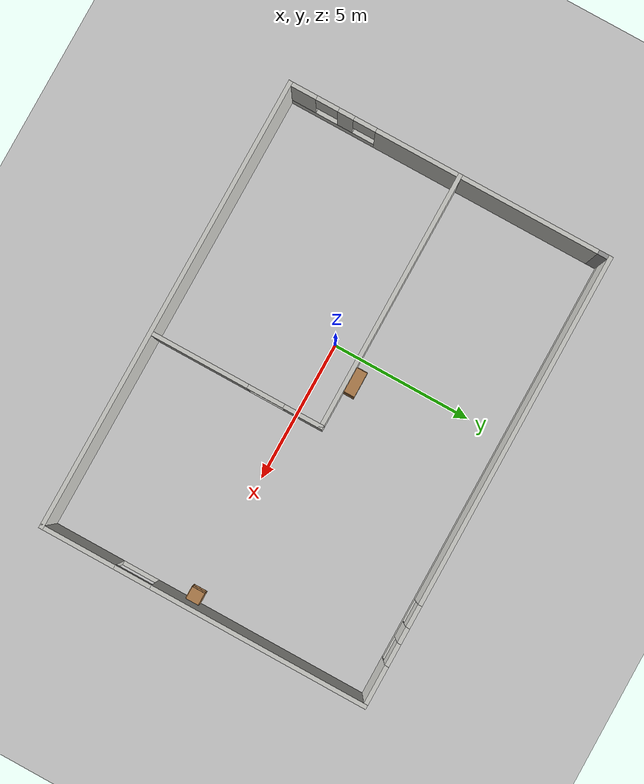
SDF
<sdf version="1.6">
 <world name="default">
  <plugin name="hello" filename="libhello.so"/>
  <light name="sun" type="directional">
   <pose>0 0 10 0 -0 0</pose>
   <diffuse>0.8 0.8 0.8 1</diffuse>
   <specular>0.2 0.2 0.2 1</specular>
   <attenuation>
    <range>1000</range>
    <constant>0.9</constant>
    <linear>0.01</linear>
    <quadratic>0.001</quadratic>
   </attenuation>
   <direction>-0.5 0.1 -0.9</direction>
   <spot><inner_angle>0</inner_angle><outer_angle>0</outer_angle><falloff>0</falloff></spot>
  </light>
  <model name="ground_plane">
   <static>1</static>
   <link name="link">
    <collision name="collision">
     <geometry><plane><normal>0 0 1</normal><size>100 100</size></plane></geometry>
     <surface>
      <contact><collide_bitmask>65535</collide_bitmask></contact>
      <friction><ode><mu>100</mu><mu2>50</mu2></ode></friction>
     </surface>
    </collision>
    <visual name="visual">
     <cast_shadows>0</cast_shadows>
     <geometry><plane><normal>0 0 1</normal><size>100 100</size></plane></geometry>
     <material>
      <script><uri>file://media/materials/scripts/gazebo.material</uri><name>Gazebo/Grey</name></script>
     </material>
    </visual>
   </link>
  </model>
  <gravity>0 0 -9.8</gravity>
  <magnetic_field>6e-06 2.3e-05 -4.2e-05</magnetic_field>
  <atmosphere type="adiabatic"/>
  <physics name="default_physics" default="0" type="ode">
   <max_step_size>0.001</max_step_size>
   <real_time_factor>1</real_time_factor>
   <real_time_update_rate>1000</real_time_update_rate>
  </physics>
  <scene><ambient>0.4 0.4 0.4 1</ambient><background>0.7 0.7 0.7 1</background><shadows>1</shadows></scene>
  <spherical_coordinates>
   <surface_model>EARTH_WGS84</surface_model>
   <latitude_deg>0</latitude_deg>
   <longitude_deg>0</longitude_deg>
   <elevation>0</elevation>
   <heading_deg>0</heading_deg>
  </spherical_coordinates>
  <model name="building">
   <pose>1.57198 0.564152 0 0 -0 0</pose>
   <link name="Wall_0">
    <pose>-8.05 -0.25 0 0 -0 -1.5708</pose>
    <visual name="Wall_0_Visual_0">
     <pose>-1.60737 0 1.25 0 -0 0</pose>
     <geometry><box><size>8.03525 0.15 2.5</size></box></geometry>
     <material>
      <script><uri>file://media/materials/scripts/gazebo.material</uri><name>Gazebo/CeilingTiled</name></script>
      <ambient>0 0.666667 0 1</ambient>
     </material>
     <meta><layer>0</layer></meta>
    </visual>
    <collision name="Wall_0_Collision_0">
     <geometry><box><size>8.03525 0.15 2.5</size></box></geometry>
     <pose>-1.60737 0 1.25 0 -0 0</pose>
    </collision>
    <visual name="Wall_0_Visual_1">
     <pose>4.01762 0 0.25 0 -0 0</pose>
     <geometry><box><size>3.21475 0.15 0.5</size></box></geometry>
     <material>
      <script><uri>file://media/materials/scripts/gazebo.material</uri><name>Gazebo/CeilingTiled</name></script>
      <ambient>0 0.666667 0 1</ambient>
     </material>
     <meta><layer>0</layer></meta>
    </visual>
    <collision name="Wall_0_Collision_1">
     <geometry><box><size>3.21475 0.15 0.5</size></box></geometry>
     <pose>4.01762 0 0.25 0 -0 0</pose>
    </collision>
    <visual name="Wall_0_Visual_2">
     <pose>3.49236 0 1.5 0 -0 0</pose>
     <geometry><box><size>0.564225 0.15 2</size></box></geometry>
     <material>
      <script><uri>file://media/materials/scripts/gazebo.material</uri><name>Gazebo/CeilingTiled</name></script>
      <ambient>0 0.666667 0 1</ambient>
     </material>
     <meta><layer>0</layer></meta>
    </visual>
    <collision name="Wall_0_Collision_2">
     <geometry><box><size>0.564225 0.15 2</size></box></geometry>
     <pose>3.49236 0 1.5 0 -0 0</pose>
    </collision>
    <visual name="Wall_0_Visual_3">
     <pose>5.09974 0 1.5 0 -0 0</pose>
     <geometry><box><size>1.05052 0.15 2</size></box></geometry>
     <material>
      <script><uri>file://media/materials/scripts/gazebo.material</uri><name>Gazebo/CeilingTiled</name></script>
      <ambient>0 0.666667 0 1</ambient>
     </material>
     <meta><layer>0</layer></meta>
    </visual>
    <collision name="Wall_0_Collision_3">
     <geometry><box><size>1.05052 0.15 2</size></box></geometry>
     <pose>5.09974 0 1.5 0 -0 0</pose>
    </collision>
    <visual name="Wall_0_Visual_4">
     <pose>2.81025 0 1.9 0 -0 0</pose>
     <geometry><box><size>0.8 0.15 1.2</size></box></geometry>
     <material>
      <script><uri>file://media/materials/scripts/gazebo.material</uri><name>Gazebo/CeilingTiled</name></script>
      <ambient>0 0.666667 0 1</ambient>
     </material>
     <meta><layer>0</layer></meta>
    </visual>
    <collision name="Wall_0_Collision_4">
     <geometry><box><size>0.8 0.15 1.2</size></box></geometry>
     <pose>2.81025 0 1.9 0 -0 0</pose>
    </collision>
    <visual name="Wall_0_Visual_5">
     <pose>4.17448 0 1.9 0 -0 0</pose>
     <geometry><box><size>0.8 0.15 1.2</size></box></geometry>
     <material>
      <script><uri>file://media/materials/scripts/gazebo.material</uri><name>Gazebo/CeilingTiled</name></script>
      <ambient>0 0.666667 0 1</ambient>
     </material>
     <meta><layer>0</layer></meta>
    </visual>
    <collision name="Wall_0_Collision_5">
     <geometry><box><size>0.8 0.15 1.2</size></box></geometry>
     <pose>4.17448 0 1.9 0 -0 0</pose>
    </collision>
   </link>
   <link name="Wall_1">
    <collision name="Wall_1_Collision">
     <geometry><box><size>16.25 0.15 2.5</size></box></geometry>
     <pose>0 0 1.25 0 -0 0</pose>
    </collision>
    <visual name="Wall_1_Visual">
     <pose>0 0 1.25 0 -0 0</pose>
     <geometry><box><size>16.25 0.15 2.5</size></box></geometry>
     <material>
      <script><uri>file://media/materials/scripts/gazebo.material</uri><name>Gazebo/CeilingTiled</name></script>
      <ambient>0 0.666667 0 1</ambient>
     </material>
     <meta><layer>0</layer></meta>
    </visual>
    <pose>0 -5.8 0 0 -0 0</pose>
   </link>
   <link name="Wall_2">
    <pose>8.05 -0 0 0 -0 1.5708</pose>
    <visual name="Wall_2_Visual_0">
     <pose>-4.53027 0 1.25 0 -0 0</pose>
     <geometry><box><size>2.68945 0.15 2.5</size></box></geometry>
     <material>
      <script><uri>file://media/materials/scripts/gazebo.material</uri><name>Gazebo/CeilingTiled</name></script>
      <ambient>0 0.666667 0 1</ambient>
     </material>
     <meta><layer>0</layer></meta>
    </visual>
    <collision name="Wall_2_Collision_0">
     <geometry><box><size>2.68945 0.15 2.5</size></box></geometry>
     <pose>-4.53027 0 1.25 0 -0 0</pose>
    </collision>
    <visual name="Wall_2_Visual_1">
     <pose>1.99473 0 1.25 0 -0 0</pose>
     <geometry><box><size>7.76055 0.15 2.5</size></box></geometry>
     <material>
      <script><uri>file://media/materials/scripts/gazebo.material</uri><name>Gazebo/CeilingTiled</name></script>
      <ambient>0 0.666667 0 1</ambient>
     </material>
     <meta><layer>0</layer></meta>
    </visual>
    <collision name="Wall_2_Collision_1">
     <geometry><box><size>7.76055 0.15 2.5</size></box></geometry>
     <pose>1.99473 0 1.25 0 -0 0</pose>
    </collision>
    <visual name="Wall_2_Visual_2">
     <pose>-2.53555 0 0 0 -0 0</pose>
     <geometry><box><size>1.3 0.15 0</size></box></geometry>
     <material>
      <script><uri>file://media/materials/scripts/gazebo.material</uri><name>Gazebo/CeilingTiled</name></script>
      <ambient>0 0.666667 0 1</ambient>
     </material>
     <meta><layer>0</layer></meta>
    </visual>
    <collision name="Wall_2_Collision_2">
     <geometry><box><size>1.3 0.15 0</size></box></geometry>
     <pose>-2.53555 0 0 0 -0 0</pose>
    </collision>
    <visual name="Wall_2_Visual_3">
     <pose>-2.53555 0 2.35 0 -0 0</pose>
     <geometry><box><size>1.3 0.15 0.3</size></box></geometry>
     <material>
      <script><uri>file://media/materials/scripts/gazebo.material</uri><name>Gazebo/CeilingTiled</name></script>
      <ambient>0 0.666667 0 1</ambient>
     </material>
     <meta><layer>0</layer></meta>
    </visual>
    <collision name="Wall_2_Collision_3">
     <geometry><box><size>1.3 0.15 0.3</size></box></geometry>
     <pose>-2.53555 0 2.35 0 -0 0</pose>
    </collision>
   </link>
   <link name="Wall_3">
    <pose>0 5.8 0 0 -0 3.14159</pose>
    <visual name="Wall_3_Visual_0">
     <pose>-7.37345 0 1.25 0 -0 0</pose>
     <geometry><box><size>1.50311 0.15 2.5</size></box></geometry>
     <material>
      <script><uri>file://media/materials/scripts/gazebo.material</uri><name>Gazebo/CeilingTiled</name></script>
      <ambient>0 0.666667 0 1</ambient>
     </material>
     <meta><layer>0</layer></meta>
    </visual>
    <collision name="Wall_3_Collision_0">
     <geometry><box><size>1.50311 0.15 2.5</size></box></geometry>
     <pose>-7.37345 0 1.25 0 -0 0</pose>
    </collision>
    <visual name="Wall_3_Visual_1">
     <pose>0.751554 0 0.25 0 -0 0</pose>
     <geometry><box><size>14.7469 0.15 0.5</size></box></geometry>
     <material>
      <script><uri>file://media/materials/scripts/gazebo.material</uri><name>Gazebo/CeilingTiled</name></script>
      <ambient>0 0.666667 0 1</ambient>
     </material>
     <meta><layer>0</layer></meta>
    </visual>
    <collision name="Wall_3_Collision_1">
     <geometry><box><size>14.7469 0.15 0.5</size></box></geometry>
     <pose>0.751554 0 0.25 0 -0 0</pose>
    </collision>
    <visual name="Wall_3_Visual_2">
     <pose>-5.53978 0 1.5 0 -0 0</pose>
     <geometry><box><size>0.564225 0.15 2</size></box></geometry>
     <material>
      <script><uri>file://media/materials/scripts/gazebo.material</uri><name>Gazebo/CeilingTiled</name></script>
      <ambient>0 0.666667 0 1</ambient>
     </material>
     <meta><layer>0</layer></meta>
    </visual>
    <collision name="Wall_3_Collision_2">
     <geometry><box><size>0.564225 0.15 2</size></box></geometry>
     <pose>-5.53978 0 1.5 0 -0 0</pose>
    </collision>
    <visual name="Wall_3_Visual_3">
     <pose>1.83367 0 1.5 0 -0 0</pose>
     <geometry><box><size>12.5827 0.15 2</size></box></geometry>
     <material>
      <script><uri>file://media/materials/scripts/gazebo.material</uri><name>Gazebo/CeilingTiled</name></script>
      <ambient>0 0.666667 0 1</ambient>
     </material>
     <meta><layer>0</layer></meta>
    </visual>
    <collision name="Wall_3_Collision_3">
     <geometry><box><size>12.5827 0.15 2</size></box></geometry>
     <pose>1.83367 0 1.5 0 -0 0</pose>
    </collision>
    <visual name="Wall_3_Visual_4">
     <pose>-6.22189 0 1.9 0 -0 0</pose>
     <geometry><box><size>0.8 0.15 1.2</size></box></geometry>
     <material>
      <script><uri>file://media/materials/scripts/gazebo.material</uri><name>Gazebo/CeilingTiled</name></script>
      <ambient>0 0.666667 0 1</ambient>
     </material>
     <meta><layer>0</layer></meta>
    </visual>
    <collision name="Wall_3_Collision_4">
     <geometry><box><size>0.8 0.15 1.2</size></box></geometry>
     <pose>-6.22189 0 1.9 0 -0 0</pose>
    </collision>
    <visual name="Wall_3_Visual_5">
     <pose>-4.85767 0 1.9 0 -0 0</pose>
     <geometry><box><size>0.8 0.15 1.2</size></box></geometry>
     <material>
      <script><uri>file://media/materials/scripts/gazebo.material</uri><name>Gazebo/CeilingTiled</name></script>
      <ambient>0 0.666667 0 1</ambient>
     </material>
     <meta><layer>0</layer></meta>
    </visual>
    <collision name="Wall_3_Collision_5">
     <geometry><box><size>0.8 0.15 1.2</size></box></geometry>
     <pose>-4.85767 0 1.9 0 -0 0</pose>
    </collision>
   </link>
   <link name="Wall_4">
    <collision name="Wall_4_Collision">
     <geometry><box><size>0.65 0.15 2.5</size></box></geometry>
     <pose>0 0 1.25 0 -0 0</pose>
    </collision>
    <visual name="Wall_4_Visual">
     <pose>0 0 1.25 0 -0 0</pose>
     <geometry><box><size>0.65 0.15 2.5</size></box></geometry>
     <material>
      <script><uri>file://media/materials/scripts/gazebo.material</uri><name>Gazebo/Grey</name></script>
      <ambient>1 1 1 1</ambient>
     </material>
     <meta><layer>0</layer></meta>
    </visual>
    <pose>-8.05 5.55 0 0 -0 -1.5708</pose>
   </link>
   <link name="Wall_7">
    <collision name="Wall_7_Collision">
     <geometry><box><size>9.25 0.15 2.5</size></box></geometry>
     <pose>0 0 1.25 0 -0 0</pose>
    </collision>
    <visual name="Wall_7_Visual">
     <pose>0 0 1.25 0 -0 0</pose>
     <geometry><box><size>9.25 0.15 2.5</size></box></geometry>
     <material>
      <script><uri>file://media/materials/scripts/gazebo.material</uri><name>Gazebo/CeilingTiled</name></script>
      <ambient>0 0.666667 0 1</ambient>
     </material>
     <meta><layer>0</layer></meta>
    </visual>
    <pose>-3.5 0.367802 0 0 -0 0</pose>
   </link>
   <link name="Wall_8">
    <pose>1.05 -2.6822 0 0 -0 -1.5708</pose>
    <visual name="Wall_8_Visual_0">
     <pose>-2.41557 0 1.25 0 -0 0</pose>
     <geometry><box><size>1.41887 0.15 2.5</size></box></geometry>
     <material>
      <script><uri>file://media/materials/scripts/gazebo.material</uri><name>Gazebo/CeilingTiled</name></script>
      <ambient>0 0.666667 0 1</ambient>
     </material>
     <meta><layer>0</layer></meta>
    </visual>
    <collision name="Wall_8_Collision_0">
     <geometry><box><size>1.41887 0.15 2.5</size></box></geometry>
     <pose>-2.41557 0 1.25 0 -0 0</pose>
    </collision>
    <visual name="Wall_8_Visual_1">
     <pose>1.35943 0 1.25 0 -0 0</pose>
     <geometry><box><size>3.53113 0.15 2.5</size></box></geometry>
     <material>
      <script><uri>file://media/materials/scripts/gazebo.material</uri><name>Gazebo/CeilingTiled</name></script>
      <ambient>0 0.666667 0 1</ambient>
     </material>
     <meta><layer>0</layer></meta>
    </visual>
    <collision name="Wall_8_Collision_1">
     <geometry><box><size>3.53113 0.15 2.5</size></box></geometry>
     <pose>1.35943 0 1.25 0 -0 0</pose>
    </collision>
    <visual name="Wall_8_Visual_2">
     <pose>-1.05613 0 0 0 -0 0</pose>
     <geometry><box><size>1.3 0.15 0</size></box></geometry>
     <material>
      <script><uri>file://media/materials/scripts/gazebo.material</uri><name>Gazebo/CeilingTiled</name></script>
      <ambient>0 0.666667 0 1</ambient>
     </material>
     <meta><layer>0</layer></meta>
    </visual>
    <collision name="Wall_8_Collision_2">
     <geometry><box><size>1.3 0.15 0</size></box></geometry>
     <pose>-1.05613 0 0 0 -0 0</pose>
    </collision>
    <visual name="Wall_8_Visual_3">
     <pose>-1.05613 0 2.35 0 -0 0</pose>
     <geometry><box><size>1.3 0.15 0.3</size></box></geometry>
     <material>
      <script><uri>file://media/materials/scripts/gazebo.material</uri><name>Gazebo/CeilingTiled</name></script>
      <ambient>0 0.666667 0 1</ambient>
     </material>
     <meta><layer>0</layer></meta>
    </visual>
    <collision name="Wall_8_Collision_3">
     <geometry><box><size>1.3 0.15 0.3</size></box></geometry>
     <pose>-1.05613 0 2.35 0 -0 0</pose>
    </collision>
   </link>
   <static>1</static>
  </model>
  <model name="bookshelf">
   <static>1</static>
   <link name="link">
    <inertial><mass>1</mass></inertial>
    <collision name="back">
     <pose>0 0.005 0.6 0 -0 0</pose>
     <geometry><box><size>0.9 0.01 1.2</size></box></geometry>
    </collision>
    <visual name="visual1">
     <pose>0 0.005 0.6 0 -0 0</pose>
     <geometry><box><size>0.9 0.01 1.2</size></box></geometry>
     <material>
      <script><uri>file://media/materials/scripts/gazebo.material</uri><name>Gazebo/Wood</name></script>
     </material>
    </visual>
    <collision name="left_side">
     <pose>0.45 -0.195 0.6 0 -0 0</pose>
     <geometry><box><size>0.02 0.4 1.2</size></box></geometry>
    </collision>
    <visual name="visual2">
     <pose>0.45 -0.195 0.6 0 -0 0</pose>
     <geometry><box><size>0.02 0.4 1.2</size></box></geometry>
     <material>
      <script><uri>file://media/materials/scripts/gazebo.material</uri><name>Gazebo/Wood</name></script>
     </material>
    </visual>
    <collision name="right_side">
     <pose>-0.45 -0.195 0.6 0 -0 0</pose>
     <geometry><box><size>0.02 0.4 1.2</size></box></geometry>
    </collision>
    <visual name="visual3">
     <pose>-0.45 -0.195 0.6 0 -0 0</pose>
     <geometry><box><size>0.02 0.4 1.2</size></box></geometry>
     <material>
      <script><uri>file://media/materials/scripts/gazebo.material</uri><name>Gazebo/Wood</name></script>
     </material>
    </visual>
    <collision name="bottom">
     <pose>0 -0.195 0.03 0 -0 0</pose>
     <geometry><box><size>0.88 0.4 0.06</size></box></geometry>
    </collision>
    <visual name="visual4">
     <pose>0 -0.195 0.03 0 -0 0</pose>
     <geometry><box><size>0.88 0.4 0.06</size></box></geometry>
     <material>
      <script><uri>file://media/materials/scripts/gazebo.material</uri><name>Gazebo/Wood</name></script>
     </material>
    </visual>
    <collision name="top">
     <pose>0 -0.195 1.19 0 -0 0</pose>
     <geometry><box><size>0.88 0.4 0.02</size></box></geometry>
    </collision>
    <visual name="visual5">
     <pose>0 -0.195 1.19 0 -0 0</pose>
     <geometry><box><size>0.88 0.4 0.02</size></box></geometry>
     <material>
      <script><uri>file://media/materials/scripts/gazebo.material</uri><name>Gazebo/Wood</name></script>
     </material>
    </visual>
    <collision name="low_shelf">
     <pose>0 -0.195 0.43 0 -0 0</pose>
     <geometry><box><size>0.88 0.4 0.02</size></box></geometry>
    </collision>
    <visual name="visual6">
     <pose>0 -0.195 0.43 0 -0 0</pose>
     <geometry><box><size>0.88 0.4 0.02</size></box></geometry>
     <material>
      <script><uri>file://media/materials/scripts/gazebo.material</uri><name>Gazebo/Wood</name></script>
     </material>
    </visual>
    <collision name="high_shelf">
     <pose>0 -0.195 0.8 0 -0 0</pose>
     <geometry><box><size>0.88 0.4 0.02</size></box></geometry>
    </collision>
    <visual name="visual7">
     <pose>0 -0.195 0.8 0 -0 0</pose>
     <geometry><box><size>0.88 0.4 0.02</size></box></geometry>
     <material>
      <script><uri>file://media/materials/scripts/gazebo.material</uri><name>Gazebo/Wood</name></script>
     </material>
    </visual>
   </link>
   <pose>0.795856 1.38076 0 0 -0 0</pose>
  </model>
  <model name="cabinet">
   <static>1</static>
   <link name="cabinet_bottom_plate">
    <inertial>
     <pose>0 0 -1 0 -0 0</pose>
     <inertia><ixx>2.05</ixx><ixy>0</ixy><ixz>0</ixz><iyy>2.05</iyy><iyz>0</iyz><izz>2.05</izz></inertia>
     <mass>25</mass>
    </inertial>
    <collision name="cabinet_bottom_plate_geom">
     <pose>0 0 0.01 0 -0 0</pose>
     <geometry><box><size>0.45 0.45 0.02</size></box></geometry>
    </collision>
    <visual name="cabinet_bottom_plate_geom_visual">
     <pose>0 0 0.01 0 -0 0</pose>
     <geometry><box><size>0.45 0.45 0.02</size></box></geometry>
     <material>
      <script><uri>file://media/materials/scripts/gazebo.material</uri><name>Gazebo/Wood</name></script>
     </material>
    </visual>
    <collision name="cabinet_bottom_plate_geom_cabinet_back_plate">
     <pose>0.235 0 0.51 0 -0 0</pose>
     <geometry><box><size>0.02 0.45 1.02</size></box></geometry>
    </collision>
    <visual name="cabinet_bottom_plate_geom_cabinet_back_plate_visual">
     <pose>0.235 0 0.51 0 -0 0</pose>
     <geometry><box><size>0.02 0.45 1.02</size></box></geometry>
     <material>
      <script><uri>file://media/materials/scripts/gazebo.material</uri><name>Gazebo/Wood</name></script>
     </material>
    </visual>
    <collision name="cabinet_bottom_plate_geom_cabinet_left_plate">
     <pose>0 0.235 0.51 0 -0 0</pose>
     <geometry><box><size>0.45 0.02 1.02</size></box></geometry>
    </collision>
    <visual name="cabinet_bottom_plate_geom_cabinet_left_plate_visual">
     <pose>0 0.235 0.51 0 -0 0</pose>
     <geometry><box><size>0.45 0.02 1.02</size></box></geometry>
     <material>
      <script><uri>file://media/materials/scripts/gazebo.material</uri><name>Gazebo/Wood</name></script>
     </material>
    </visual>
    <collision name="cabinet_bottom_plate_geom_cabinet_middle_plate">
     <pose>0 0 0.51 0 -0 0</pose>
     <geometry><box><size>0.45 0.45 0.02</size></box></geometry>
    </collision>
    <visual name="cabinet_bottom_plate_geom_cabinet_middle_plate_visual">
     <pose>0 0 0.51 0 -0 0</pose>
     <geometry><box><size>0.45 0.45 0.02</size></box></geometry>
     <material>
      <script><uri>file://media/materials/scripts/gazebo.material</uri><name>Gazebo/Wood</name></script>
     </material>
    </visual>
    <collision name="cabinet_bottom_plate_geom_cabinet_right_plate">
     <pose>0 -0.235 0.51 0 -0 0</pose>
     <geometry><box><size>0.45 0.02 1.02</size></box></geometry>
    </collision>
    <visual name="cabinet_bottom_plate_geom_cabinet_right_plate_visual">
     <pose>0 -0.235 0.51 0 -0 0</pose>
     <geometry><box><size>0.45 0.02 1.02</size></box></geometry>
     <material>
      <script><uri>file://media/materials/scripts/gazebo.material</uri><name>Gazebo/Wood</name></script>
     </material>
    </visual>
    <collision name="cabinet_bottom_plate_geom_cabinet_top_plate">
     <pose>0 0 1.01 0 -0 0</pose>
     <geometry><box><size>0.45 0.45 0.02</size></box></geometry>
    </collision>
    <visual name="cabinet_bottom_plate_geom_cabinet_top_plate_visual">
     <pose>0 0 1.01 0 -0 0</pose>
     <geometry><box><size>0.45 0.45 0.02</size></box></geometry>
     <material>
      <script><uri>file://media/materials/scripts/gazebo.material</uri><name>Gazebo/Wood</name></script>
     </material>
    </visual>
   </link>
   <pose>9.33226 0.000765 0 0 -0 0</pose>
  </model>
 </world>
</sdf>
